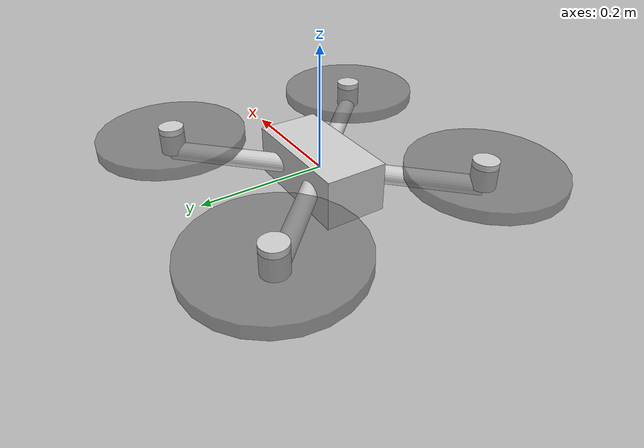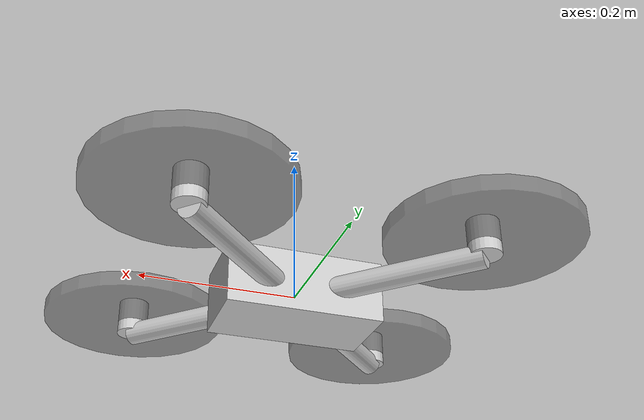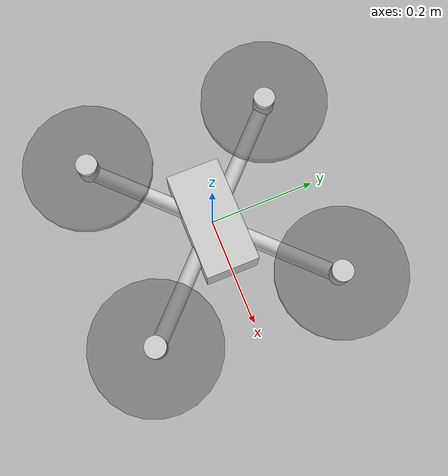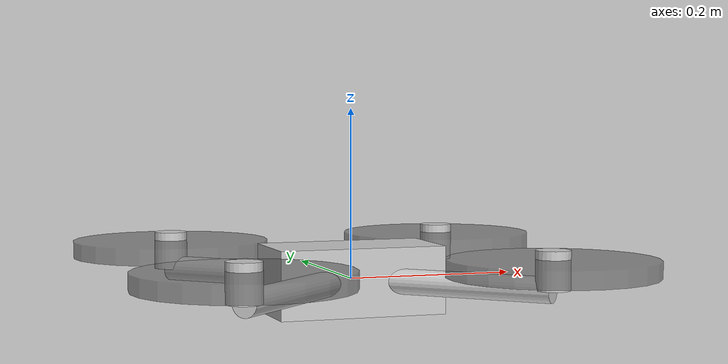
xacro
<?xml version="1.0"?>
<robot xmlns:xacro="http://www.ros.org/wiki/xacro" name="px4_quadcopter">

  <!-- Parameters -->
  <xacro:property name="body_radius" value="0.15"/>
  <xacro:property name="body_height" value="0.08"/>
  <xacro:property name="arm_length" value="0.25"/>
  <xacro:property name="arm_width" value="0.03"/>
  <xacro:property name="prop_radius" value="0.12"/>
  <xacro:property name="prop_height" value="0.02"/>

  <!-- Materials -->
  <material name="light_grey">
    <color rgba="0.8 0.8 0.8 1.0"/>
  </material>

  <material name="dark_grey_transparent">
    <color rgba="0.4 0.4 0.4 0.6"/>
  </material>

  <!-- Base link (main body and arms) -->
  <link name="base_link">
    <visual>
      <!-- Main body -->
      <geometry>
        <box size="0.20 0.10 ${body_height}"/>
      </geometry>
      <origin xyz="0 0 0" rpy="0 0 0"/>
      <material name="light_grey"/>
    </visual>

    <visual>
      <!-- Front-Right arm -->
      <geometry>
        <cylinder radius="${arm_width/2}" length="${arm_length}"/>
      </geometry>
      <origin xyz="${arm_length/2*0.707} -${arm_length/2*0.707} 0" rpy="0 1.5708 -0.785398"/>
      <material name="light_grey"/>
    </visual>

    <visual>
      <!-- Front-Right motor mount -->
      <geometry>
        <cylinder radius="${arm_width/1.5}" length="${arm_width*1.5}"/>
      </geometry>
      <origin xyz="${arm_length*0.707} -${arm_length*0.707} ${arm_width*0.75}" rpy="0 0 0"/>
      <material name="light_grey"/>
    </visual>

    <visual>
      <!-- Back-Right arm -->
      <geometry>
        <cylinder radius="${arm_width/2}" length="${arm_length}"/>
      </geometry>
      <origin xyz="-${arm_length/2*0.707} -${arm_length/2*0.707} 0" rpy="0 1.5708 0.785398"/>
      <material name="light_grey"/>
    </visual>

    <visual>
      <!-- Back-Right motor mount -->
      <geometry>
        <cylinder radius="${arm_width/1.5}" length="${arm_width*1.5}"/>
      </geometry>
      <origin xyz="-${arm_length*0.707} -${arm_length*0.707} ${arm_width*0.75}" rpy="0 0 0"/>
      <material name="light_grey"/>
    </visual>

    <visual>
      <!-- Back-Left arm -->
      <geometry>
        <cylinder radius="${arm_width/2}" length="${arm_length}"/>
      </geometry>
      <origin xyz="-${arm_length/2*0.707} ${arm_length/2*0.707} 0" rpy="0 1.5708 -0.785398"/>
      <material name="light_grey"/>
    </visual>

    <visual>
      <!-- Back-Left motor mount -->
      <geometry>
        <cylinder radius="${arm_width/1.5}" length="${arm_width*1.5}"/>
      </geometry>
      <origin xyz="-${arm_length*0.707} ${arm_length*0.707} ${arm_width*0.75}" rpy="0 0 0"/>
      <material name="light_grey"/>
    </visual>

    <visual>
      <!-- Front-Left arm -->
      <geometry>
        <cylinder radius="${arm_width/2}" length="${arm_length}"/>
      </geometry>
      <origin xyz="${arm_length/2*0.707} ${arm_length/2*0.707} 0" rpy="0 1.5708 0.785398"/>
      <material name="light_grey"/>
    </visual>

    <visual>
      <!-- Front-Left motor mount -->
      <geometry>
        <cylinder radius="${arm_width/1.5}" length="${arm_width*1.5}"/>
      </geometry>
      <origin xyz="${arm_length*0.707} ${arm_length*0.707} ${arm_width*0.75}" rpy="0 0 0"/>
      <material name="light_grey"/>
    </visual>

    <!-- Collision (single rectangular body) -->
    <collision>
      <geometry>
        <box size="0.20 0.10 ${body_height}"/>
      </geometry>
      <origin xyz="0 0 0" rpy="0 0 0"/>
    </collision>

    <!-- Inertial properties -->
    <inertial>
      <mass value="1.5"/>
      <origin xyz="0 0 0" rpy="0 0 0"/>
      <inertia ixx="0.0347563" ixy="0.0" ixz="0.0"
               iyy="0.0347563" iyz="0.0"
               izz="0.0168750"/>
    </inertial>
  </link>

  <!-- Propellers -->
  <link name="front_right_propeller">
    <visual>
      <geometry>
        <cylinder radius="${prop_radius}" length="${prop_height}"/>
      </geometry>
      <origin xyz="0 0 0" rpy="0 0 0"/>
      <material name="dark_grey_transparent"/>
    </visual>
  </link>

  <link name="front_left_propeller">
    <visual>
      <geometry>
        <cylinder radius="${prop_radius}" length="${prop_height}"/>
      </geometry>
      <origin xyz="0 0 0" rpy="0 0 0"/>
      <material name="dark_grey_transparent"/>
    </visual>
  </link>

  <link name="back_right_propeller">
    <visual>
      <geometry>
        <cylinder radius="${prop_radius}" length="${prop_height}"/>
      </geometry>
      <origin xyz="0 0 0" rpy="0 0 0"/>
      <material name="dark_grey_transparent"/>
    </visual>
  </link>

  <link name="back_left_propeller">
    <visual>
      <geometry>
        <cylinder radius="${prop_radius}" length="${prop_height}"/>
      </geometry>
      <origin xyz="0 0 0" rpy="0 0 0"/>
      <material name="dark_grey_transparent"/>
    </visual>
  </link>

  <!-- Joints to position propellers -->
  <joint name="front_right_prop_joint" type="fixed">
    <parent link="base_link"/>
    <child link="front_right_propeller"/>
    <origin xyz="${arm_length*0.707} -${arm_length*0.707} ${prop_height/2 + arm_width/2}" rpy="0 0 0"/>
  </joint>

  <joint name="front_left_prop_joint" type="fixed">
    <parent link="base_link"/>
    <child link="front_left_propeller"/>
    <origin xyz="${arm_length*0.707} ${arm_length*0.707} ${prop_height/2 + arm_width/2}" rpy="0 0 0"/>
  </joint>

  <joint name="back_right_prop_joint" type="fixed">
    <parent link="base_link"/>
    <child link="back_right_propeller"/>
    <origin xyz="-${arm_length*0.707} -${arm_length*0.707} ${prop_height/2 + arm_width/2}" rpy="0 0 0"/>
  </joint>

  <joint name="back_left_prop_joint" type="fixed">
    <parent link="base_link"/>
    <child link="back_left_propeller"/>
    <origin xyz="-${arm_length*0.707} ${arm_length*0.707} ${prop_height/2 + arm_width/2}" rpy="0 0 0"/>
  </joint>

  <!-- IMU link -->
  <link name="imu_link"/>
  <joint name="imu_joint" type="fixed">
    <parent link="base_link"/>
    <child link="imu_link"/>
    <origin xyz="0 0 0" rpy="0 0 0"/>
  </joint>

</robot>
